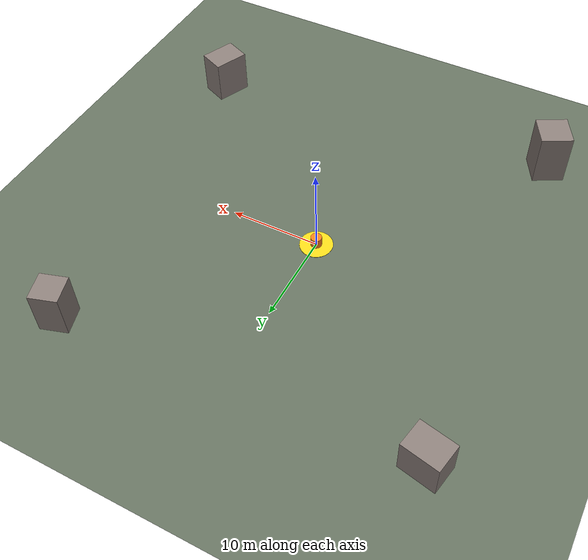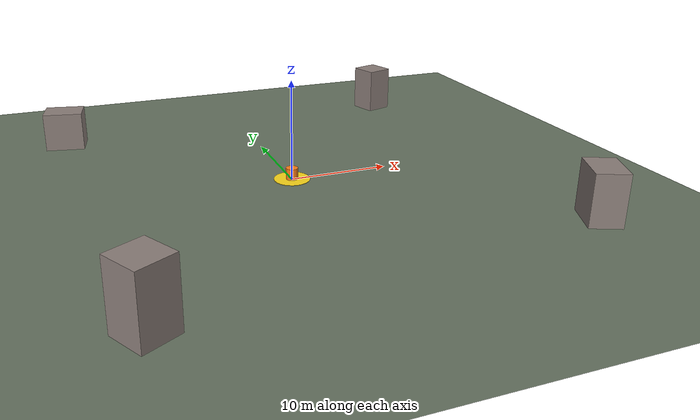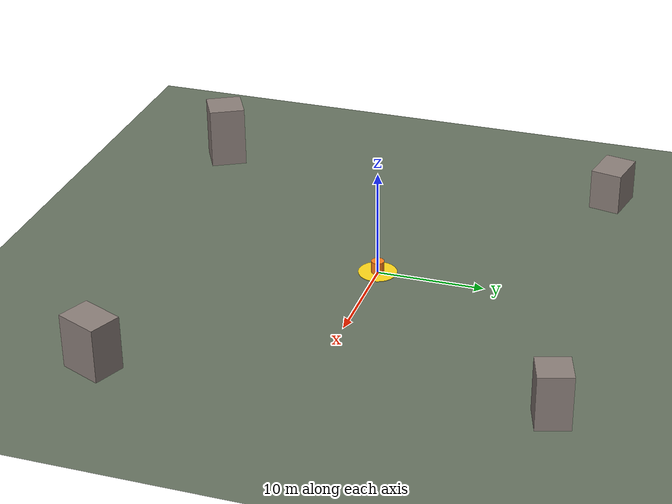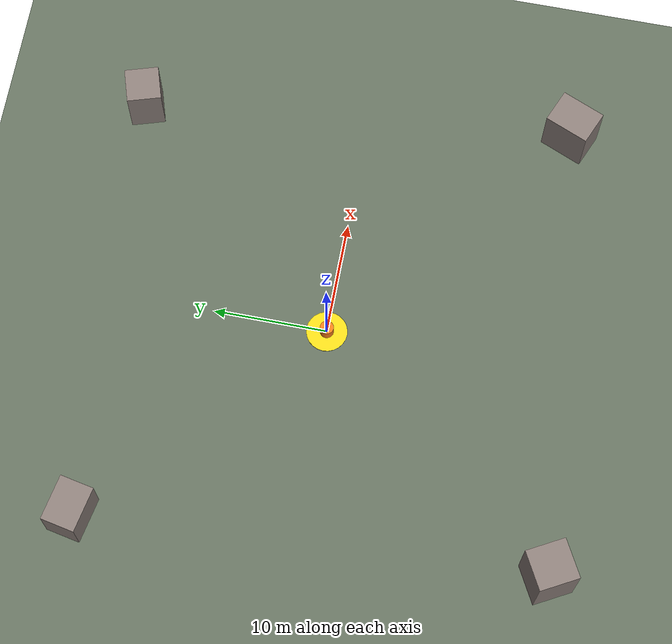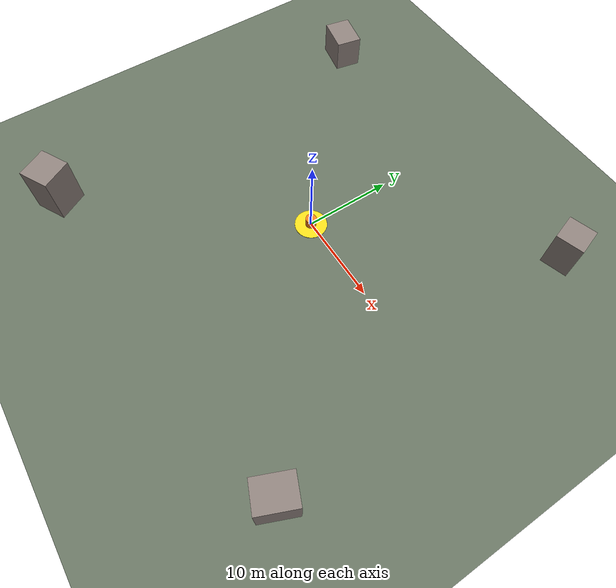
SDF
<sdf version="1.8">
 <world name="master_swarm_disaster_world">
  <physics name="500hz" type="dart">
   <max_step_size>0.002</max_step_size>
   <real_time_factor>1.0</real_time_factor>
   <real_time_update_rate>500</real_time_update_rate>
  </physics>
  <spherical_coordinates>
   <surface_model>EARTH_WGS84</surface_model>
   <world_frame_orientation>ENU</world_frame_orientation>
   <latitude_deg>12.934444</latitude_deg>
   <longitude_deg>77.691722</longitude_deg>
   <elevation>920.0</elevation>
   <heading_deg>0.0</heading_deg>
  </spherical_coordinates>
  <scene>
   <ambient>0.45 0.48 0.52 1.0</ambient>
   <background>0.65 0.75 0.88 1.0</background>
   <shadows>true</shadows>
   <grid>false</grid>
  </scene>
  <plugin filename="gz-sim-physics-system" name="gz::sim::systems::Physics"><engine>dart</engine></plugin>
  <plugin filename="gz-sim-scene-broadcaster-system" name="gz::sim::systems::SceneBroadcaster"/>
  <plugin filename="gz-sim-user-commands-system" name="gz::sim::systems::UserCommands"/>
  <plugin filename="gz-sim-sensors-system" name="gz::sim::systems::Sensors">
   <render_engine>ogre2</render_engine>
  </plugin>
  <plugin filename="gz-sim-imu-system" name="gz::sim::systems::Imu"/>
  <plugin filename="gz-sim-air-pressure-system" name="gz::sim::systems::AirPressure"/>
  <plugin filename="gz-sim-magnetometer-system" name="gz::sim::systems::Magnetometer"/>
  <plugin filename="gz-sim-navsat-system" name="gz::sim::systems::NavSat"/>
  <light type="directional" name="sun">
   <pose>0 0 100 0 0 0</pose>
   <diffuse>0.95 0.95 0.90 1</diffuse>
   <specular>0.4 0.4 0.4 1</specular>
   <direction>-0.4 0.2 -0.9</direction>
  </light>
  <light type="directional" name="sky_fill">
   <cast_shadows>false</cast_shadows>
   <pose>0 0 50 0 0 0</pose>
   <diffuse>0.25 0.30 0.40 1</diffuse>
   <direction>0.4 -0.2 -0.7</direction>
  </light>
  <model name="ground_plane">
   <static>true</static>
   <link name="link">
    <collision name="collision">
     <geometry><plane><normal>0 0 1</normal><size>300 300</size></plane></geometry>
    </collision>
    <visual name="visual">
     <geometry><plane><normal>0 0 1</normal><size>300 300</size></plane></geometry>
     <material>
      <ambient>0.32 0.35 0.30 1</ambient>
      <diffuse>0.40 0.45 0.38 1</diffuse>
      <specular>0.05 0.05 0.05 1</specular>
     </material>
    </visual>
   </link>
  </model>
  <model name="ruin_pillar_1">
   <static>true</static>
   <pose>18.0 20.0 2.5 0 0 0.3</pose>
   <link name="link">
    <collision name="c"><geometry><box><size>3 3 5</size></box></geometry></collision>
    <visual name="v">
     <geometry><box><size>3 3 5</size></box></geometry>
     <material><ambient>0.45 0.42 0.40 1</ambient><diffuse>0.55 0.50 0.48 1</diffuse></material>
    </visual>
   </link>
  </model>
  <model name="ruin_pillar_2">
   <static>true</static>
   <pose>-20.0 18.0 2.0 0 0 -0.2</pose>
   <link name="link">
    <collision name="c"><geometry><box><size>4 3 4</size></box></geometry></collision>
    <visual name="v">
     <geometry><box><size>4 3 4</size></box></geometry>
     <material><ambient>0.45 0.42 0.40 1</ambient><diffuse>0.55 0.50 0.48 1</diffuse></material>
    </visual>
   </link>
  </model>
  <model name="ruin_pillar_3">
   <static>true</static>
   <pose>-18.0 -22.0 3.0 0 0 0.5</pose>
   <link name="link">
    <collision name="c"><geometry><box><size>3.5 3.5 6</size></box></geometry></collision>
    <visual name="v">
     <geometry><box><size>3.5 3.5 6</size></box></geometry>
     <material><ambient>0.45 0.42 0.40 1</ambient><diffuse>0.55 0.50 0.48 1</diffuse></material>
    </visual>
   </link>
  </model>
  <model name="ruin_pillar_4">
   <static>true</static>
   <pose>22.0 -18.0 2.5 0 0 -0.4</pose>
   <link name="link">
    <collision name="c"><geometry><box><size>3 4 5</size></box></geometry></collision>
    <visual name="v">
     <geometry><box><size>3 4 5</size></box></geometry>
     <material><ambient>0.45 0.42 0.40 1</ambient><diffuse>0.55 0.50 0.48 1</diffuse></material>
    </visual>
   </link>
  </model>
  <model name="survivor_target_alpha">
   <static>true</static>
   <pose>0.0 0.0 0.6 0 0 0</pose>
   <link name="link">
    <collision name="c">
     <geometry><cylinder><radius>0.6</radius><length>1.2</length></cylinder></geometry>
    </collision>
    <visual name="v_body">
     <geometry><cylinder><radius>0.6</radius><length>1.2</length></cylinder></geometry>
     <material>
      <ambient>0.9 0.4 0.1 1</ambient>
      <diffuse>1.0 0.5 0.1 1</diffuse>
      <emissive>0.4 0.2 0.0 1</emissive>
     </material>
    </visual>
    <visual name="v_ring">
     <pose>0 0 -0.55 0 0 0</pose>
     <geometry><cylinder><radius>1.8</radius><length>0.05</length></cylinder></geometry>
     <material>
      <ambient>1.0 0.8 0.0 1</ambient>
      <diffuse>1.0 0.85 0.1 1</diffuse>
      <emissive>0.5 0.4 0.0 1</emissive>
     </material>
    </visual>
   </link>
  </model>
 </world>
</sdf>
